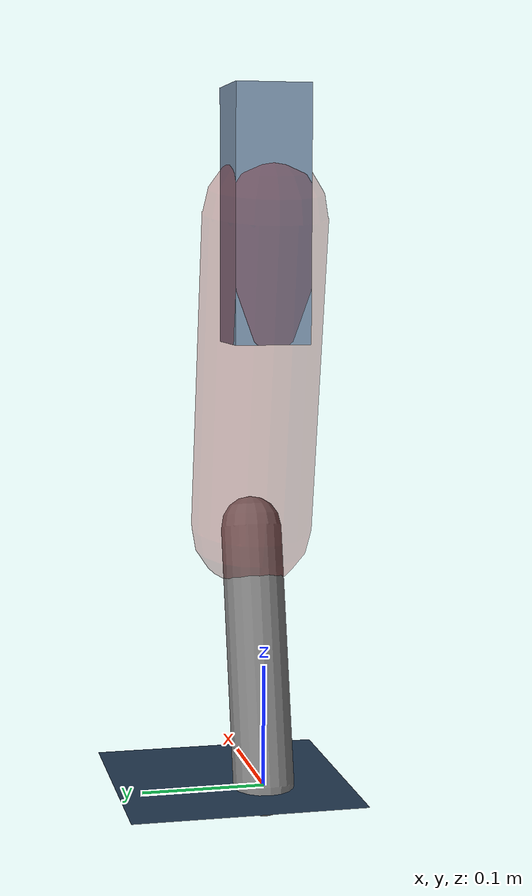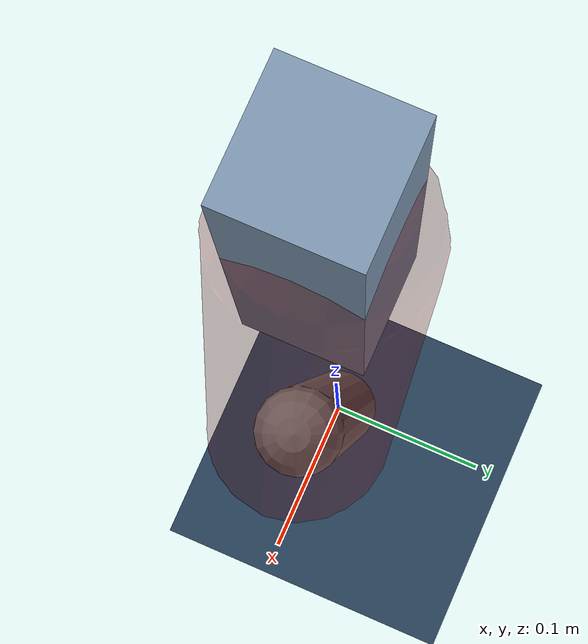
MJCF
<mujoco model="Hopper2D">
	<compiler inertiafromgeom="true" angle="radian" />
	<option timestep="0.001" integrator="implicit" cone="elliptic" solver="Newton" tolerance="1e-10" />

	<default>
		<geom contype="1" conaffinity="1" condim="3" friction="2 0.005 0.0001" solref="0.005 1" />
		<joint limited="true" damping="0.1" />
	</default>

	<asset>
		<texture name="skybox" type="skybox" builtin="gradient" rgb1=".4 .6 .8" rgb2="0 0 0" width="800" height="800" />
		<texture name="grid" type="2d" builtin="checker" rgb1=".1 .2 .3" rgb2=".2 .3 .4" width="300" height="300" mark="edge" markrgb=".2 .3 .4" />
		<material name="ground" texture="grid" texrepeat="1 1" texuniform="true" reflectance="0.1" />
		<material name="leg" rgba="0.5 0.6 0.7 1" />
	</asset>

	<worldbody>

		<geom name="floor" type="plane" size="5 5 0.25" material="ground" />

		<light directional="false" diffuse="0.8 0.8 0.8" specular="0.3 0.3 0.3" pos="0 0 2" dir="0 0 -1" />
		<light mode="targetbodycom" target="base" directional="false" diffuse="0.8 0.8 0.8" specular="0.3 0.3 0.3" pos="0 0 2" dir="0 0 -1" />

		<camera name="fixed" pos="0 -2 1" xyaxes="1 0 0 0 0 1" />
		<camera name="tracking" mode="trackcom" pos="0 -3 1" />

		<body name="root" pos="0 0 0.46177801604253776">
			<joint name="slide_x" type="slide" axis="1 0 0" range="-100 100" />
			<joint name="slide_z" type="slide" axis="0 0 1" range="0 10" />

			<body name="base" pos="0 0 0">
				<geom name="torso" type="box" size="0.03 0.03 0.1" mass="1.748" material="leg" />

				<body name="link1" pos="0 0 0" euler="0 1.3843144457516505 0">
					<joint type="hinge" axis="0 -1 0" pos="0 0 0" name="hinge1" limited="true" range="-3.14 3.14" stiffness="0" damping="0.1" />
					<geom name="thigh" type="capsule" fromto="0 0 0 0.2592341716284412 0 0" size="0.05" rgba="0.5 0 0 0.3" mass="0.8804088462339471" />

					<body name="link2" pos="0.2592341716284412 0 0" euler="0 0.41458594160108414 0">
						<joint type="hinge" axis="0 -1 0" pos="0 0 0" name="hinge2" limited="true" range="-3.14 3.14" stiffness="0" damping="0.1" />
						<geom name="shank" type="capsule" fromto="0 0 0 0.21254384441409654 0 0" size="0.025" mass="0.41143507553127723" />

					</body>
				</body>
			</body>
		</body>
	</worldbody>

	<actuator>
		<motor name="torque1" joint="hinge1" ctrlrange="-57.43525406125762 57.43525406125762" ctrllimited="true" gear="1" />
		<motor name="torque2" joint="hinge2" ctrlrange="-62.78663764943832 62.78663764943832" ctrllimited="true" gear="1" />
	</actuator>
</mujoco>
